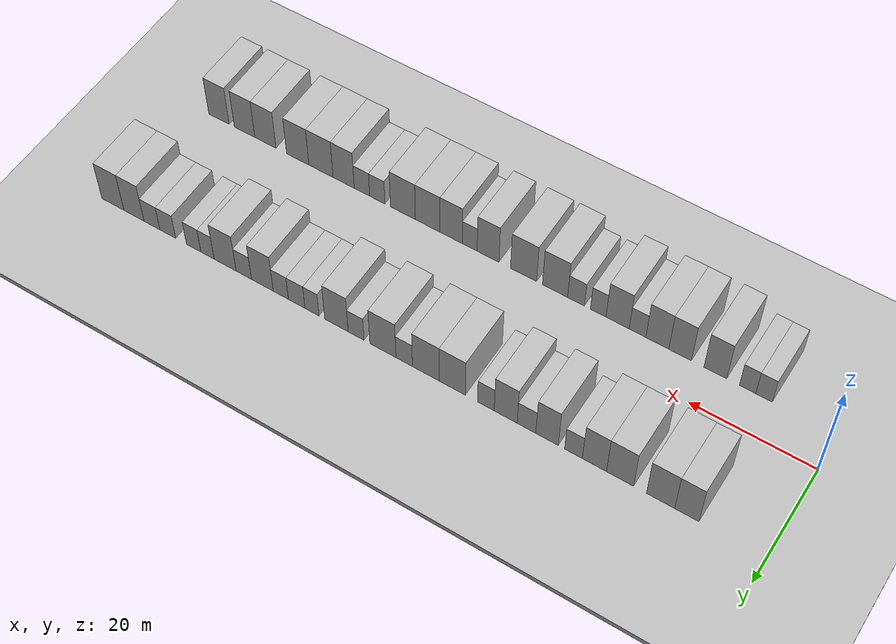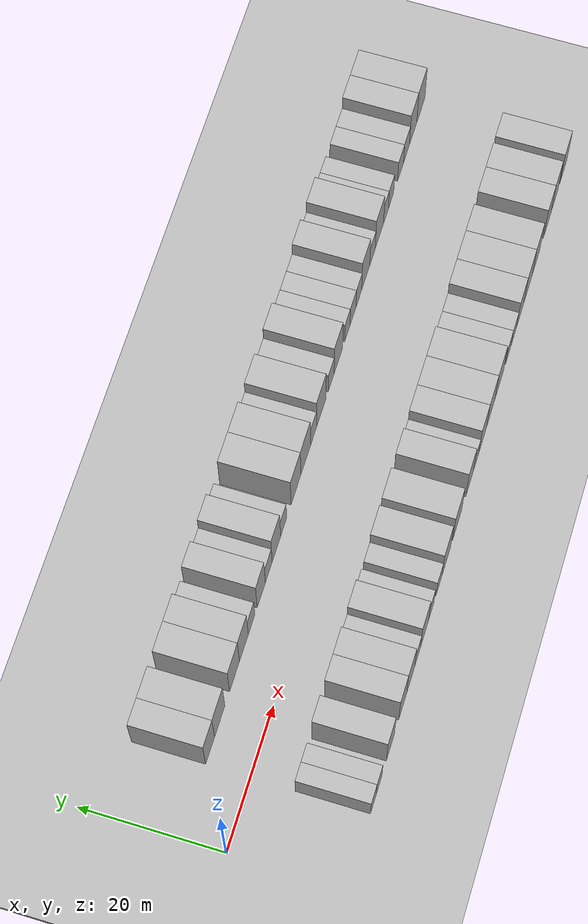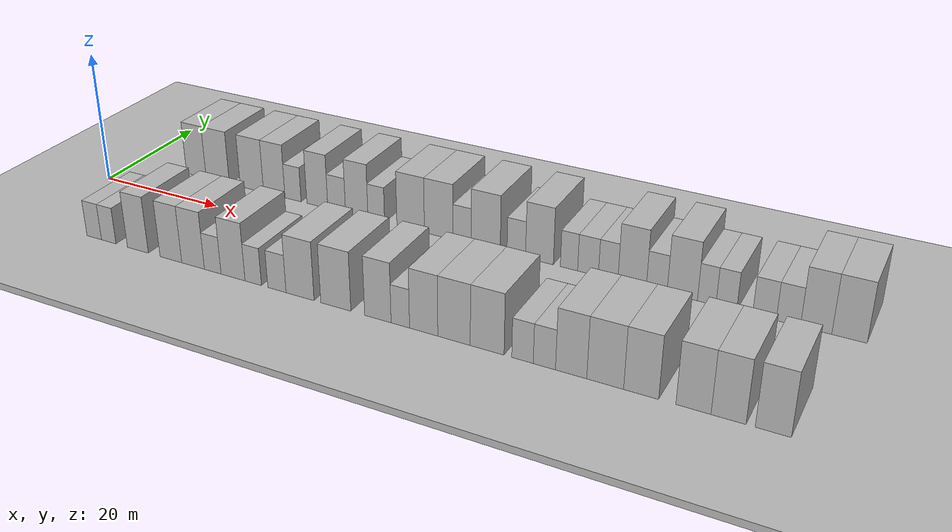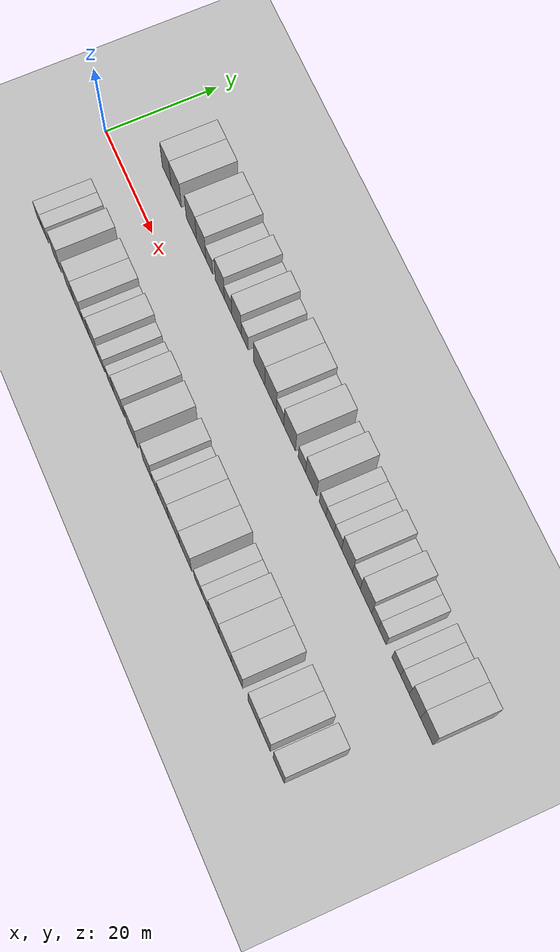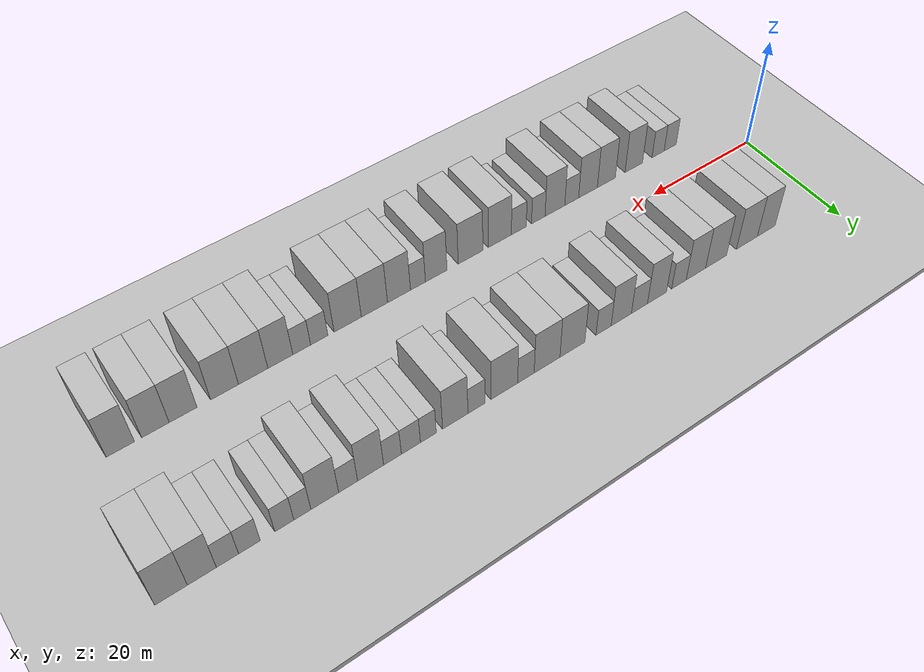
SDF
<sdf version="1.6">
 <world name="default">
  <include><name>ground_plane_1</name><uri>model://HANNAS_ground_plane</uri></include>
  <include>
   <name>ground_plane_2</name>
   <uri>model://HANNAS_ground_plane</uri>
   <pose>100 0 0  0 0 0</pose>
  </include>
  <model name="building_1">
   <static>1</static>
   <pose>11.8461 11.0000 0 0.000000 0.000000 1.570796</pose>
   <link name="link">
    <pose>0 0 4.50 0 0 0</pose>
    <collision name="collision"><geometry><box><size>10.0000 3.6923 9.0000</size></box></geometry></collision>
    <visual name="visual">
     <cast_shadows>0</cast_shadows>
     <geometry><box><size>10.0000 3.6923 9.0000</size></box></geometry>
     <material>
      <script>
       <uri>model://HANNAS_wall/materials/scripts</uri>
       <uri>model://HANNAS_wall/materials/textures</uri>
       <name>vrc/HANNAS_wall</name>
      </script>
     </material>
    </visual>
   </link>
  </model>
  <model name="building_2">
   <static>1</static>
   <pose>15.8507 11.0000 0 0.000000 0.000000 1.570796</pose>
   <link name="link">
    <pose>0 0 4.50 0 0 0</pose>
    <collision name="collision"><geometry><box><size>10.0000 4.3167 9.0000</size></box></geometry></collision>
    <visual name="visual">
     <cast_shadows>0</cast_shadows>
     <geometry><box><size>10.0000 4.3167 9.0000</size></box></geometry>
     <material>
      <script>
       <uri>model://HANNAS_wall/materials/scripts</uri>
       <uri>model://HANNAS_wall/materials/textures</uri>
       <name>vrc/HANNAS_wall</name>
      </script>
     </material>
    </visual>
   </link>
  </model>
  <model name="building_3">
   <static>1</static>
   <pose>22.1099 11.0000 0 0.000000 0.000000 1.570796</pose>
   <link name="link">
    <pose>0 0 4.50 0 0 0</pose>
    <collision name="collision"><geometry><box><size>10.0000 4.2018 9.0000</size></box></geometry></collision>
    <visual name="visual">
     <cast_shadows>0</cast_shadows>
     <geometry><box><size>10.0000 4.2018 9.0000</size></box></geometry>
     <material>
      <script>
       <uri>model://HANNAS_wall/materials/scripts</uri>
       <uri>model://HANNAS_wall/materials/textures</uri>
       <name>vrc/HANNAS_wall</name>
      </script>
     </material>
    </visual>
   </link>
  </model>
  <model name="building_4">
   <static>1</static>
   <pose>26.1107 11.0000 0 0.000000 0.000000 1.570796</pose>
   <link name="link">
    <pose>0 0 4.50 0 0 0</pose>
    <collision name="collision"><geometry><box><size>10.0000 3.7997 9.0000</size></box></geometry></collision>
    <visual name="visual">
     <cast_shadows>0</cast_shadows>
     <geometry><box><size>10.0000 3.7997 9.0000</size></box></geometry>
     <material>
      <script>
       <uri>model://HANNAS_wall/materials/scripts</uri>
       <uri>model://HANNAS_wall/materials/textures</uri>
       <name>vrc/HANNAS_wall</name>
      </script>
     </material>
    </visual>
   </link>
  </model>
  <model name="building_5">
   <static>1</static>
   <pose>29.4177 11.0000 0 0.000000 0.000000 1.570796</pose>
   <link name="link">
    <pose>0 0 3.00 0 0 0</pose>
    <collision name="collision"><geometry><box><size>10.0000 2.8143 6.0000</size></box></geometry></collision>
    <visual name="visual">
     <cast_shadows>0</cast_shadows>
     <geometry><box><size>10.0000 2.8143 6.0000</size></box></geometry>
     <material>
      <script>
       <uri>model://HANNAS_wall/materials/scripts</uri>
       <uri>model://HANNAS_wall/materials/textures</uri>
       <name>vrc/HANNAS_wall</name>
      </script>
     </material>
    </visual>
   </link>
  </model>
  <model name="building_6">
   <static>1</static>
   <pose>33.6269 11.0000 0 0.000000 0.000000 1.570796</pose>
   <link name="link">
    <pose>0 0 4.50 0 0 0</pose>
    <collision name="collision"><geometry><box><size>10.0000 3.6042 9.0000</size></box></geometry></collision>
    <visual name="visual">
     <cast_shadows>0</cast_shadows>
     <geometry><box><size>10.0000 3.6042 9.0000</size></box></geometry>
     <material>
      <script>
       <uri>model://HANNAS_wall/materials/scripts</uri>
       <uri>model://HANNAS_wall/materials/textures</uri>
       <name>vrc/HANNAS_wall</name>
      </script>
     </material>
    </visual>
   </link>
  </model>
  <model name="building_7">
   <static>1</static>
   <pose>36.9258 11.0000 0 0.000000 0.000000 1.570796</pose>
   <link name="link">
    <pose>0 0 3.00 0 0 0</pose>
    <collision name="collision"><geometry><box><size>10.0000 2.9936 6.0000</size></box></geometry></collision>
    <visual name="visual">
     <cast_shadows>0</cast_shadows>
     <geometry><box><size>10.0000 2.9936 6.0000</size></box></geometry>
     <material>
      <script>
       <uri>model://HANNAS_wall/materials/scripts</uri>
       <uri>model://HANNAS_wall/materials/textures</uri>
       <name>vrc/HANNAS_wall</name>
      </script>
     </material>
    </visual>
   </link>
  </model>
  <model name="building_8">
   <static>1</static>
   <pose>40.2935 11.0000 0 0.000000 0.000000 1.570796</pose>
   <link name="link">
    <pose>0 0 4.50 0 0 0</pose>
    <collision name="collision"><geometry><box><size>10.0000 3.7417 9.0000</size></box></geometry></collision>
    <visual name="visual">
     <cast_shadows>0</cast_shadows>
     <geometry><box><size>10.0000 3.7417 9.0000</size></box></geometry>
     <material>
      <script>
       <uri>model://HANNAS_wall/materials/scripts</uri>
       <uri>model://HANNAS_wall/materials/textures</uri>
       <name>vrc/HANNAS_wall</name>
      </script>
     </material>
    </visual>
   </link>
  </model>
  <model name="building_9">
   <static>1</static>
   <pose>43.5288 11.0000 0 0.000000 0.000000 1.570796</pose>
   <link name="link">
    <pose>0 0 3.00 0 0 0</pose>
    <collision name="collision"><geometry><box><size>10.0000 2.7289 6.0000</size></box></geometry></collision>
    <visual name="visual">
     <cast_shadows>0</cast_shadows>
     <geometry><box><size>10.0000 2.7289 6.0000</size></box></geometry>
     <material>
      <script>
       <uri>model://HANNAS_wall/materials/scripts</uri>
       <uri>model://HANNAS_wall/materials/textures</uri>
       <name>vrc/HANNAS_wall</name>
      </script>
     </material>
    </visual>
   </link>
  </model>
  <model name="building_10">
   <static>1</static>
   <pose>49.0889 11.0000 0 0.000000 0.000000 1.570796</pose>
   <link name="link">
    <pose>0 0 4.50 0 0 0</pose>
    <collision name="collision"><geometry><box><size>10.0000 4.3914 9.0000</size></box></geometry></collision>
    <visual name="visual">
     <cast_shadows>0</cast_shadows>
     <geometry><box><size>10.0000 4.3914 9.0000</size></box></geometry>
     <material>
      <script>
       <uri>model://HANNAS_wall/materials/scripts</uri>
       <uri>model://HANNAS_wall/materials/textures</uri>
       <name>vrc/HANNAS_wall</name>
      </script>
     </material>
    </visual>
   </link>
  </model>
  <model name="building_11">
   <static>1</static>
   <pose>53.5104 11.0000 0 0.000000 0.000000 1.570796</pose>
   <link name="link">
    <pose>0 0 4.50 0 0 0</pose>
    <collision name="collision"><geometry><box><size>10.0000 4.4515 9.0000</size></box></geometry></collision>
    <visual name="visual">
     <cast_shadows>0</cast_shadows>
     <geometry><box><size>10.0000 4.4515 9.0000</size></box></geometry>
     <material>
      <script>
       <uri>model://HANNAS_wall/materials/scripts</uri>
       <uri>model://HANNAS_wall/materials/textures</uri>
       <name>vrc/HANNAS_wall</name>
      </script>
     </material>
    </visual>
   </link>
  </model>
  <model name="building_12">
   <static>1</static>
   <pose>57.1330 11.0000 0 0.000000 0.000000 1.570796</pose>
   <link name="link">
    <pose>0 0 3.00 0 0 0</pose>
    <collision name="collision"><geometry><box><size>10.0000 2.7939 6.0000</size></box></geometry></collision>
    <visual name="visual">
     <cast_shadows>0</cast_shadows>
     <geometry><box><size>10.0000 2.7939 6.0000</size></box></geometry>
     <material>
      <script>
       <uri>model://HANNAS_wall/materials/scripts</uri>
       <uri>model://HANNAS_wall/materials/textures</uri>
       <name>vrc/HANNAS_wall</name>
      </script>
     </material>
    </visual>
   </link>
  </model>
  <model name="building_13">
   <static>1</static>
   <pose>60.7514 11.0000 0 0.000000 0.000000 1.570796</pose>
   <link name="link">
    <pose>0 0 4.50 0 0 0</pose>
    <collision name="collision"><geometry><box><size>10.0000 4.4428 9.0000</size></box></geometry></collision>
    <visual name="visual">
     <cast_shadows>0</cast_shadows>
     <geometry><box><size>10.0000 4.4428 9.0000</size></box></geometry>
     <material>
      <script>
       <uri>model://HANNAS_wall/materials/scripts</uri>
       <uri>model://HANNAS_wall/materials/textures</uri>
       <name>vrc/HANNAS_wall</name>
      </script>
     </material>
    </visual>
   </link>
  </model>
  <model name="building_14">
   <static>1</static>
   <pose>65.3488 11.0000 0 0.000000 0.000000 1.570796</pose>
   <link name="link">
    <pose>0 0 3.00 0 0 0</pose>
    <collision name="collision"><geometry><box><size>10.0000 2.7521 6.0000</size></box></geometry></collision>
    <visual name="visual">
     <cast_shadows>0</cast_shadows>
     <geometry><box><size>10.0000 2.7521 6.0000</size></box></geometry>
     <material>
      <script>
       <uri>model://HANNAS_wall/materials/scripts</uri>
       <uri>model://HANNAS_wall/materials/textures</uri>
       <name>vrc/HANNAS_wall</name>
      </script>
     </material>
    </visual>
   </link>
  </model>
  <model name="building_15">
   <static>1</static>
   <pose>68.7537 11.0000 0 0.000000 0.000000 1.570796</pose>
   <link name="link">
    <pose>0 0 4.50 0 0 0</pose>
    <collision name="collision"><geometry><box><size>10.0000 4.0577 9.0000</size></box></geometry></collision>
    <visual name="visual">
     <cast_shadows>0</cast_shadows>
     <geometry><box><size>10.0000 4.0577 9.0000</size></box></geometry>
     <material>
      <script>
       <uri>model://HANNAS_wall/materials/scripts</uri>
       <uri>model://HANNAS_wall/materials/textures</uri>
       <name>vrc/HANNAS_wall</name>
      </script>
     </material>
    </visual>
   </link>
  </model>
  <model name="building_16">
   <static>1</static>
   <pose>73.0201 11.0000 0 0.000000 0.000000 1.570796</pose>
   <link name="link">
    <pose>0 0 3.00 0 0 0</pose>
    <collision name="collision"><geometry><box><size>10.0000 2.4750 6.0000</size></box></geometry></collision>
    <visual name="visual">
     <cast_shadows>0</cast_shadows>
     <geometry><box><size>10.0000 2.4750 6.0000</size></box></geometry>
     <material>
      <script>
       <uri>model://HANNAS_wall/materials/scripts</uri>
       <uri>model://HANNAS_wall/materials/textures</uri>
       <name>vrc/HANNAS_wall</name>
      </script>
     </material>
    </visual>
   </link>
  </model>
  <model name="building_17">
   <static>1</static>
   <pose>75.7228 11.0000 0 0.000000 0.000000 1.570796</pose>
   <link name="link">
    <pose>0 0 3.00 0 0 0</pose>
    <collision name="collision"><geometry><box><size>10.0000 2.9305 6.0000</size></box></geometry></collision>
    <visual name="visual">
     <cast_shadows>0</cast_shadows>
     <geometry><box><size>10.0000 2.9305 6.0000</size></box></geometry>
     <material>
      <script>
       <uri>model://HANNAS_wall/materials/scripts</uri>
       <uri>model://HANNAS_wall/materials/textures</uri>
       <name>vrc/HANNAS_wall</name>
      </script>
     </material>
    </visual>
   </link>
  </model>
  <model name="building_18">
   <static>1</static>
   <pose>78.5389 11.0000 0 0.000000 0.000000 1.570796</pose>
   <link name="link">
    <pose>0 0 3.00 0 0 0</pose>
    <collision name="collision"><geometry><box><size>10.0000 2.7016 6.0000</size></box></geometry></collision>
    <visual name="visual">
     <cast_shadows>0</cast_shadows>
     <geometry><box><size>10.0000 2.7016 6.0000</size></box></geometry>
     <material>
      <script>
       <uri>model://HANNAS_wall/materials/scripts</uri>
       <uri>model://HANNAS_wall/materials/textures</uri>
       <name>vrc/HANNAS_wall</name>
      </script>
     </material>
    </visual>
   </link>
  </model>
  <model name="building_19">
   <static>1</static>
   <pose>81.8342 11.0000 0 0.000000 0.000000 1.570796</pose>
   <link name="link">
    <pose>0 0 4.50 0 0 0</pose>
    <collision name="collision"><geometry><box><size>10.0000 3.8890 9.0000</size></box></geometry></collision>
    <visual name="visual">
     <cast_shadows>0</cast_shadows>
     <geometry><box><size>10.0000 3.8890 9.0000</size></box></geometry>
     <material>
      <script>
       <uri>model://HANNAS_wall/materials/scripts</uri>
       <uri>model://HANNAS_wall/materials/textures</uri>
       <name>vrc/HANNAS_wall</name>
      </script>
     </material>
    </visual>
   </link>
  </model>
  <model name="building_20">
   <static>1</static>
   <pose>85.1712 11.0000 0 0.000000 0.000000 1.570796</pose>
   <link name="link">
    <pose>0 0 3.00 0 0 0</pose>
    <collision name="collision"><geometry><box><size>10.0000 2.7850 6.0000</size></box></geometry></collision>
    <visual name="visual">
     <cast_shadows>0</cast_shadows>
     <geometry><box><size>10.0000 2.7850 6.0000</size></box></geometry>
     <material>
      <script>
       <uri>model://HANNAS_wall/materials/scripts</uri>
       <uri>model://HANNAS_wall/materials/textures</uri>
       <name>vrc/HANNAS_wall</name>
      </script>
     </material>
    </visual>
   </link>
  </model>
  <model name="building_21">
   <static>1</static>
   <pose>88.5730 11.0000 0 0.000000 0.000000 1.570796</pose>
   <link name="link">
    <pose>0 0 4.50 0 0 0</pose>
    <collision name="collision"><geometry><box><size>10.0000 4.0187 9.0000</size></box></geometry></collision>
    <visual name="visual">
     <cast_shadows>0</cast_shadows>
     <geometry><box><size>10.0000 4.0187 9.0000</size></box></geometry>
     <material>
      <script>
       <uri>model://HANNAS_wall/materials/scripts</uri>
       <uri>model://HANNAS_wall/materials/textures</uri>
       <name>vrc/HANNAS_wall</name>
      </script>
     </material>
    </visual>
   </link>
  </model>
  <model name="building_22">
   <static>1</static>
   <pose>91.7902 11.0000 0 0.000000 0.000000 1.570796</pose>
   <link name="link">
    <pose>0 0 3.00 0 0 0</pose>
    <collision name="collision"><geometry><box><size>10.0000 2.4156 6.0000</size></box></geometry></collision>
    <visual name="visual">
     <cast_shadows>0</cast_shadows>
     <geometry><box><size>10.0000 2.4156 6.0000</size></box></geometry>
     <material>
      <script>
       <uri>model://HANNAS_wall/materials/scripts</uri>
       <uri>model://HANNAS_wall/materials/textures</uri>
       <name>vrc/HANNAS_wall</name>
      </script>
     </material>
    </visual>
   </link>
  </model>
  <model name="building_23">
   <static>1</static>
   <pose>94.3314 11.0000 0 0.000000 0.000000 1.570796</pose>
   <link name="link">
    <pose>0 0 3.00 0 0 0</pose>
    <collision name="collision"><geometry><box><size>10.0000 2.6670 6.0000</size></box></geometry></collision>
    <visual name="visual">
     <cast_shadows>0</cast_shadows>
     <geometry><box><size>10.0000 2.6670 6.0000</size></box></geometry>
     <material>
      <script>
       <uri>model://HANNAS_wall/materials/scripts</uri>
       <uri>model://HANNAS_wall/materials/textures</uri>
       <name>vrc/HANNAS_wall</name>
      </script>
     </material>
    </visual>
   </link>
  </model>
  <model name="building_24">
   <static>1</static>
   <pose>99.1431 11.0000 0 0.000000 0.000000 1.570796</pose>
   <link name="link">
    <pose>0 0 3.00 0 0 0</pose>
    <collision name="collision"><geometry><box><size>10.0000 2.9564 6.0000</size></box></geometry></collision>
    <visual name="visual">
     <cast_shadows>0</cast_shadows>
     <geometry><box><size>10.0000 2.9564 6.0000</size></box></geometry>
     <material>
      <script>
       <uri>model://HANNAS_wall/materials/scripts</uri>
       <uri>model://HANNAS_wall/materials/textures</uri>
       <name>vrc/HANNAS_wall</name>
      </script>
     </material>
    </visual>
   </link>
  </model>
  <model name="building_25">
   <static>1</static>
   <pose>102.1106 11.0000 0 0.000000 0.000000 1.570796</pose>
   <link name="link">
    <pose>0 0 3.00 0 0 0</pose>
    <collision name="collision"><geometry><box><size>10.0000 2.9786 6.0000</size></box></geometry></collision>
    <visual name="visual">
     <cast_shadows>0</cast_shadows>
     <geometry><box><size>10.0000 2.9786 6.0000</size></box></geometry>
     <material>
      <script>
       <uri>model://HANNAS_wall/materials/scripts</uri>
       <uri>model://HANNAS_wall/materials/textures</uri>
       <name>vrc/HANNAS_wall</name>
      </script>
     </material>
    </visual>
   </link>
  </model>
  <model name="building_26">
   <static>1</static>
   <pose>105.5033 11.0000 0 0.000000 0.000000 1.570796</pose>
   <link name="link">
    <pose>0 0 4.50 0 0 0</pose>
    <collision name="collision"><geometry><box><size>10.0000 3.8068 9.0000</size></box></geometry></collision>
    <visual name="visual">
     <cast_shadows>0</cast_shadows>
     <geometry><box><size>10.0000 3.8068 9.0000</size></box></geometry>
     <material>
      <script>
       <uri>model://HANNAS_wall/materials/scripts</uri>
       <uri>model://HANNAS_wall/materials/textures</uri>
       <name>vrc/HANNAS_wall</name>
      </script>
     </material>
    </visual>
   </link>
  </model>
  <model name="building_27">
   <static>1</static>
   <pose>109.5099 11.0000 0 0.000000 0.000000 1.570796</pose>
   <link name="link">
    <pose>0 0 4.50 0 0 0</pose>
    <collision name="collision"><geometry><box><size>10.0000 4.2064 9.0000</size></box></geometry></collision>
    <visual name="visual">
     <cast_shadows>0</cast_shadows>
     <geometry><box><size>10.0000 4.2064 9.0000</size></box></geometry>
     <material>
      <script>
       <uri>model://HANNAS_wall/materials/scripts</uri>
       <uri>model://HANNAS_wall/materials/textures</uri>
       <name>vrc/HANNAS_wall</name>
      </script>
     </material>
    </visual>
   </link>
  </model>
  <model name="building_53">
   <static>1</static>
   <pose>11.2933 -11.0000 0 0.000000 0.000000 1.570796</pose>
   <link name="link">
    <pose>0 0 3.00 0 0 0</pose>
    <collision name="collision"><geometry><box><size>10.0000 2.5867 6.0000</size></box></geometry></collision>
    <visual name="visual">
     <cast_shadows>0</cast_shadows>
     <geometry><box><size>10.0000 2.5867 6.0000</size></box></geometry>
     <material>
      <script>
       <uri>model://HANNAS_wall/materials/scripts</uri>
       <uri>model://HANNAS_wall/materials/textures</uri>
       <name>vrc/HANNAS_wall</name>
      </script>
     </material>
    </visual>
   </link>
  </model>
  <model name="building_54">
   <static>1</static>
   <pose>13.8677 -11.0000 0 0.000000 0.000000 1.570796</pose>
   <link name="link">
    <pose>0 0 3.00 0 0 0</pose>
    <collision name="collision"><geometry><box><size>10.0000 2.5620 6.0000</size></box></geometry></collision>
    <visual name="visual">
     <cast_shadows>0</cast_shadows>
     <geometry><box><size>10.0000 2.5620 6.0000</size></box></geometry>
     <material>
      <script>
       <uri>model://HANNAS_wall/materials/scripts</uri>
       <uri>model://HANNAS_wall/materials/textures</uri>
       <name>vrc/HANNAS_wall</name>
      </script>
     </material>
    </visual>
   </link>
  </model>
  <model name="building_55">
   <static>1</static>
   <pose>18.9541 -11.0000 0 0.000000 0.000000 1.570796</pose>
   <link name="link">
    <pose>0 0 4.50 0 0 0</pose>
    <collision name="collision"><geometry><box><size>10.0000 3.6108 9.0000</size></box></geometry></collision>
    <visual name="visual">
     <cast_shadows>0</cast_shadows>
     <geometry><box><size>10.0000 3.6108 9.0000</size></box></geometry>
     <material>
      <script>
       <uri>model://HANNAS_wall/materials/scripts</uri>
       <uri>model://HANNAS_wall/materials/textures</uri>
       <name>vrc/HANNAS_wall</name>
      </script>
     </material>
    </visual>
   </link>
  </model>
  <model name="building_56">
   <static>1</static>
   <pose>24.5793 -11.0000 0 0.000000 0.000000 1.570796</pose>
   <link name="link">
    <pose>0 0 4.50 0 0 0</pose>
    <collision name="collision"><geometry><box><size>10.0000 3.6396 9.0000</size></box></geometry></collision>
    <visual name="visual">
     <cast_shadows>0</cast_shadows>
     <geometry><box><size>10.0000 3.6396 9.0000</size></box></geometry>
     <material>
      <script>
       <uri>model://HANNAS_wall/materials/scripts</uri>
       <uri>model://HANNAS_wall/materials/textures</uri>
       <name>vrc/HANNAS_wall</name>
      </script>
     </material>
    </visual>
   </link>
  </model>
  <model name="building_57">
   <static>1</static>
   <pose>28.2634 -11.0000 0 0.000000 0.000000 1.570796</pose>
   <link name="link">
    <pose>0 0 4.50 0 0 0</pose>
    <collision name="collision"><geometry><box><size>10.0000 3.7285 9.0000</size></box></geometry></collision>
    <visual name="visual">
     <cast_shadows>0</cast_shadows>
     <geometry><box><size>10.0000 3.7285 9.0000</size></box></geometry>
     <material>
      <script>
       <uri>model://HANNAS_wall/materials/scripts</uri>
       <uri>model://HANNAS_wall/materials/textures</uri>
       <name>vrc/HANNAS_wall</name>
      </script>
     </material>
    </visual>
   </link>
  </model>
  <model name="building_58">
   <static>1</static>
   <pose>31.4846 -11.0000 0 0.000000 0.000000 1.570796</pose>
   <link name="link">
    <pose>0 0 3.00 0 0 0</pose>
    <collision name="collision"><geometry><box><size>10.0000 2.7140 6.0000</size></box></geometry></collision>
    <visual name="visual">
     <cast_shadows>0</cast_shadows>
     <geometry><box><size>10.0000 2.7140 6.0000</size></box></geometry>
     <material>
      <script>
       <uri>model://HANNAS_wall/materials/scripts</uri>
       <uri>model://HANNAS_wall/materials/textures</uri>
       <name>vrc/HANNAS_wall</name>
      </script>
     </material>
    </visual>
   </link>
  </model>
  <model name="building_59">
   <static>1</static>
   <pose>34.7580 -11.0000 0 0.000000 0.000000 1.570796</pose>
   <link name="link">
    <pose>0 0 4.50 0 0 0</pose>
    <collision name="collision"><geometry><box><size>10.0000 3.8327 9.0000</size></box></geometry></collision>
    <visual name="visual">
     <cast_shadows>0</cast_shadows>
     <geometry><box><size>10.0000 3.8327 9.0000</size></box></geometry>
     <material>
      <script>
       <uri>model://HANNAS_wall/materials/scripts</uri>
       <uri>model://HANNAS_wall/materials/textures</uri>
       <name>vrc/HANNAS_wall</name>
      </script>
     </material>
    </visual>
   </link>
  </model>
  <model name="building_60">
   <static>1</static>
   <pose>37.9654 -11.0000 0 0.000000 0.000000 1.570796</pose>
   <link name="link">
    <pose>0 0 3.00 0 0 0</pose>
    <collision name="collision"><geometry><box><size>10.0000 2.5821 6.0000</size></box></geometry></collision>
    <visual name="visual">
     <cast_shadows>0</cast_shadows>
     <geometry><box><size>10.0000 2.5821 6.0000</size></box></geometry>
     <material>
      <script>
       <uri>model://HANNAS_wall/materials/scripts</uri>
       <uri>model://HANNAS_wall/materials/textures</uri>
       <name>vrc/HANNAS_wall</name>
      </script>
     </material>
    </visual>
   </link>
  </model>
  <model name="building_61">
   <static>1</static>
   <pose>41.6599 -11.0000 0 0.000000 0.000000 1.570796</pose>
   <link name="link">
    <pose>0 0 3.00 0 0 0</pose>
    <collision name="collision"><geometry><box><size>10.0000 2.8070 6.0000</size></box></geometry></collision>
    <visual name="visual">
     <cast_shadows>0</cast_shadows>
     <geometry><box><size>10.0000 2.8070 6.0000</size></box></geometry>
     <material>
      <script>
       <uri>model://HANNAS_wall/materials/scripts</uri>
       <uri>model://HANNAS_wall/materials/textures</uri>
       <name>vrc/HANNAS_wall</name>
      </script>
     </material>
    </visual>
   </link>
  </model>
  <model name="building_62">
   <static>1</static>
   <pose>45.1889 -11.0000 0 0.000000 0.000000 1.570796</pose>
   <link name="link">
    <pose>0 0 4.50 0 0 0</pose>
    <collision name="collision"><geometry><box><size>10.0000 4.2508 9.0000</size></box></geometry></collision>
    <visual name="visual">
     <cast_shadows>0</cast_shadows>
     <geometry><box><size>10.0000 4.2508 9.0000</size></box></geometry>
     <material>
      <script>
       <uri>model://HANNAS_wall/materials/scripts</uri>
       <uri>model://HANNAS_wall/materials/textures</uri>
       <name>vrc/HANNAS_wall</name>
      </script>
     </material>
    </visual>
   </link>
  </model>
  <model name="building_63">
   <static>1</static>
   <pose>50.5391 -11.0000 0 0.000000 0.000000 1.570796</pose>
   <link name="link">
    <pose>0 0 4.50 0 0 0</pose>
    <collision name="collision"><geometry><box><size>10.0000 4.4496 9.0000</size></box></geometry></collision>
    <visual name="visual">
     <cast_shadows>0</cast_shadows>
     <geometry><box><size>10.0000 4.4496 9.0000</size></box></geometry>
     <material>
      <script>
       <uri>model://HANNAS_wall/materials/scripts</uri>
       <uri>model://HANNAS_wall/materials/textures</uri>
       <name>vrc/HANNAS_wall</name>
      </script>
     </material>
    </visual>
   </link>
  </model>
  <model name="building_64">
   <static>1</static>
   <pose>56.6525 -11.0000 0 0.000000 0.000000 1.570796</pose>
   <link name="link">
    <pose>0 0 4.50 0 0 0</pose>
    <collision name="collision"><geometry><box><size>10.0000 3.7773 9.0000</size></box></geometry></collision>
    <visual name="visual">
     <cast_shadows>0</cast_shadows>
     <geometry><box><size>10.0000 3.7773 9.0000</size></box></geometry>
     <material>
      <script>
       <uri>model://HANNAS_wall/materials/scripts</uri>
       <uri>model://HANNAS_wall/materials/textures</uri>
       <name>vrc/HANNAS_wall</name>
      </script>
     </material>
    </visual>
   </link>
  </model>
  <model name="building_65">
   <static>1</static>
   <pose>59.8363 -11.0000 0 0.000000 0.000000 1.570796</pose>
   <link name="link">
    <pose>0 0 3.00 0 0 0</pose>
    <collision name="collision"><geometry><box><size>10.0000 2.5903 6.0000</size></box></geometry></collision>
    <visual name="visual">
     <cast_shadows>0</cast_shadows>
     <geometry><box><size>10.0000 2.5903 6.0000</size></box></geometry>
     <material>
      <script>
       <uri>model://HANNAS_wall/materials/scripts</uri>
       <uri>model://HANNAS_wall/materials/textures</uri>
       <name>vrc/HANNAS_wall</name>
      </script>
     </material>
    </visual>
   </link>
  </model>
  <model name="building_66">
   <static>1</static>
   <pose>63.0855 -11.0000 0 0.000000 0.000000 1.570796</pose>
   <link name="link">
    <pose>0 0 4.50 0 0 0</pose>
    <collision name="collision"><geometry><box><size>10.0000 3.9080 9.0000</size></box></geometry></collision>
    <visual name="visual">
     <cast_shadows>0</cast_shadows>
     <geometry><box><size>10.0000 3.9080 9.0000</size></box></geometry>
     <material>
      <script>
       <uri>model://HANNAS_wall/materials/scripts</uri>
       <uri>model://HANNAS_wall/materials/textures</uri>
       <name>vrc/HANNAS_wall</name>
      </script>
     </material>
    </visual>
   </link>
  </model>
  <model name="building_67">
   <static>1</static>
   <pose>67.2296 -11.0000 0 0.000000 0.000000 1.570796</pose>
   <link name="link">
    <pose>0 0 4.50 0 0 0</pose>
    <collision name="collision"><geometry><box><size>10.0000 4.3804 9.0000</size></box></geometry></collision>
    <visual name="visual">
     <cast_shadows>0</cast_shadows>
     <geometry><box><size>10.0000 4.3804 9.0000</size></box></geometry>
     <material>
      <script>
       <uri>model://HANNAS_wall/materials/scripts</uri>
       <uri>model://HANNAS_wall/materials/textures</uri>
       <name>vrc/HANNAS_wall</name>
      </script>
     </material>
    </visual>
   </link>
  </model>
  <model name="building_68">
   <static>1</static>
   <pose>71.6520 -11.0000 0 0.000000 0.000000 1.570796</pose>
   <link name="link">
    <pose>0 0 4.50 0 0 0</pose>
    <collision name="collision"><geometry><box><size>10.0000 4.4644 9.0000</size></box></geometry></collision>
    <visual name="visual">
     <cast_shadows>0</cast_shadows>
     <geometry><box><size>10.0000 4.4644 9.0000</size></box></geometry>
     <material>
      <script>
       <uri>model://HANNAS_wall/materials/scripts</uri>
       <uri>model://HANNAS_wall/materials/textures</uri>
       <name>vrc/HANNAS_wall</name>
      </script>
     </material>
    </visual>
   </link>
  </model>
  <model name="building_69">
   <static>1</static>
   <pose>76.2661 -11.0000 0 0.000000 0.000000 1.570796</pose>
   <link name="link">
    <pose>0 0 3.00 0 0 0</pose>
    <collision name="collision"><geometry><box><size>10.0000 2.7637 6.0000</size></box></geometry></collision>
    <visual name="visual">
     <cast_shadows>0</cast_shadows>
     <geometry><box><size>10.0000 2.7637 6.0000</size></box></geometry>
     <material>
      <script>
       <uri>model://HANNAS_wall/materials/scripts</uri>
       <uri>model://HANNAS_wall/materials/textures</uri>
       <name>vrc/HANNAS_wall</name>
      </script>
     </material>
    </visual>
   </link>
  </model>
  <model name="building_70">
   <static>1</static>
   <pose>79.0561 -11.0000 0 0.000000 0.000000 1.570796</pose>
   <link name="link">
    <pose>0 0 3.00 0 0 0</pose>
    <collision name="collision"><geometry><box><size>10.0000 2.8163 6.0000</size></box></geometry></collision>
    <visual name="visual">
     <cast_shadows>0</cast_shadows>
     <geometry><box><size>10.0000 2.8163 6.0000</size></box></geometry>
     <material>
      <script>
       <uri>model://HANNAS_wall/materials/scripts</uri>
       <uri>model://HANNAS_wall/materials/textures</uri>
       <name>vrc/HANNAS_wall</name>
      </script>
     </material>
    </visual>
   </link>
  </model>
  <model name="building_71">
   <static>1</static>
   <pose>82.4078 -11.0000 0 0.000000 0.000000 1.570796</pose>
   <link name="link">
    <pose>0 0 4.50 0 0 0</pose>
    <collision name="collision"><geometry><box><size>10.0000 3.8872 9.0000</size></box></geometry></collision>
    <visual name="visual">
     <cast_shadows>0</cast_shadows>
     <geometry><box><size>10.0000 3.8872 9.0000</size></box></geometry>
     <material>
      <script>
       <uri>model://HANNAS_wall/materials/scripts</uri>
       <uri>model://HANNAS_wall/materials/textures</uri>
       <name>vrc/HANNAS_wall</name>
      </script>
     </material>
    </visual>
   </link>
  </model>
  <model name="building_72">
   <static>1</static>
   <pose>86.5895 -11.0000 0 0.000000 0.000000 1.570796</pose>
   <link name="link">
    <pose>0 0 4.50 0 0 0</pose>
    <collision name="collision"><geometry><box><size>10.0000 4.4761 9.0000</size></box></geometry></collision>
    <visual name="visual">
     <cast_shadows>0</cast_shadows>
     <geometry><box><size>10.0000 4.4761 9.0000</size></box></geometry>
     <material>
      <script>
       <uri>model://HANNAS_wall/materials/scripts</uri>
       <uri>model://HANNAS_wall/materials/textures</uri>
       <name>vrc/HANNAS_wall</name>
      </script>
     </material>
    </visual>
   </link>
  </model>
  <model name="building_73">
   <static>1</static>
   <pose>90.9068 -11.0000 0 0.000000 0.000000 1.570796</pose>
   <link name="link">
    <pose>0 0 4.50 0 0 0</pose>
    <collision name="collision"><geometry><box><size>10.0000 4.1585 9.0000</size></box></geometry></collision>
    <visual name="visual">
     <cast_shadows>0</cast_shadows>
     <geometry><box><size>10.0000 4.1585 9.0000</size></box></geometry>
     <material>
      <script>
       <uri>model://HANNAS_wall/materials/scripts</uri>
       <uri>model://HANNAS_wall/materials/textures</uri>
       <name>vrc/HANNAS_wall</name>
      </script>
     </material>
    </visual>
   </link>
  </model>
  <model name="building_74">
   <static>1</static>
   <pose>96.9960 -11.0000 0 0.000000 0.000000 1.570796</pose>
   <link name="link">
    <pose>0 0 4.50 0 0 0</pose>
    <collision name="collision"><geometry><box><size>10.0000 4.0198 9.0000</size></box></geometry></collision>
    <visual name="visual">
     <cast_shadows>0</cast_shadows>
     <geometry><box><size>10.0000 4.0198 9.0000</size></box></geometry>
     <material>
      <script>
       <uri>model://HANNAS_wall/materials/scripts</uri>
       <uri>model://HANNAS_wall/materials/textures</uri>
       <name>vrc/HANNAS_wall</name>
      </script>
     </material>
    </visual>
   </link>
  </model>
  <model name="building_75">
   <static>1</static>
   <pose>100.9630 -11.0000 0 0.000000 0.000000 1.570796</pose>
   <link name="link">
    <pose>0 0 4.50 0 0 0</pose>
    <collision name="collision"><geometry><box><size>10.0000 3.9142 9.0000</size></box></geometry></collision>
    <visual name="visual">
     <cast_shadows>0</cast_shadows>
     <geometry><box><size>10.0000 3.9142 9.0000</size></box></geometry>
     <material>
      <script>
       <uri>model://HANNAS_wall/materials/scripts</uri>
       <uri>model://HANNAS_wall/materials/textures</uri>
       <name>vrc/HANNAS_wall</name>
      </script>
     </material>
    </visual>
   </link>
  </model>
  <model name="building_76">
   <static>1</static>
   <pose>105.8901 -11.0000 0 0.000000 0.000000 1.570796</pose>
   <link name="link">
    <pose>0 0 4.50 0 0 0</pose>
    <collision name="collision"><geometry><box><size>10.0000 3.9400 9.0000</size></box></geometry></collision>
    <visual name="visual">
     <cast_shadows>0</cast_shadows>
     <geometry><box><size>10.0000 3.9400 9.0000</size></box></geometry>
     <material>
      <script>
       <uri>model://HANNAS_wall/materials/scripts</uri>
       <uri>model://HANNAS_wall/materials/textures</uri>
       <name>vrc/HANNAS_wall</name>
      </script>
     </material>
    </visual>
   </link>
  </model>
 </world>
</sdf>
